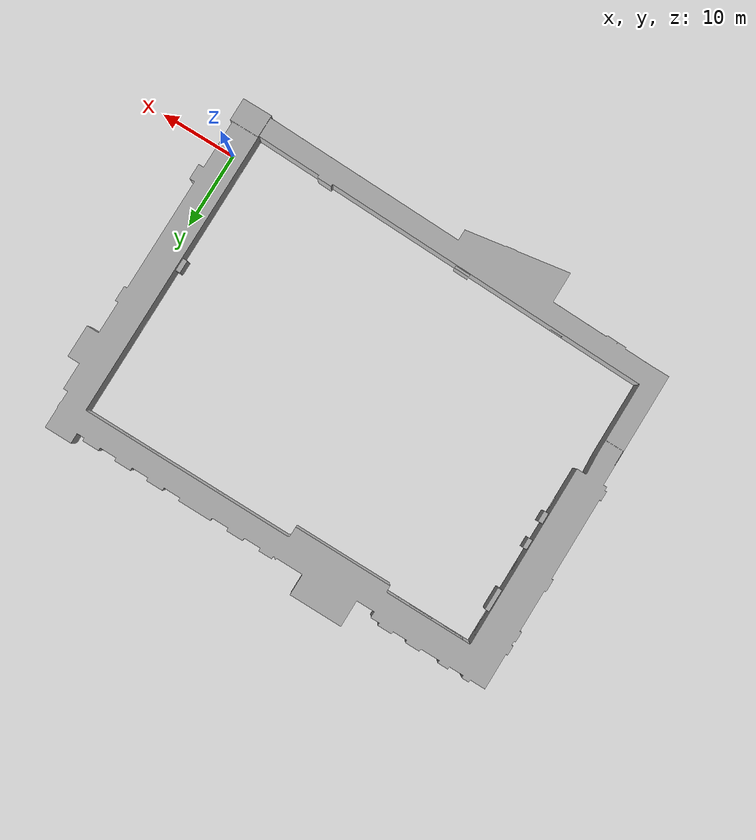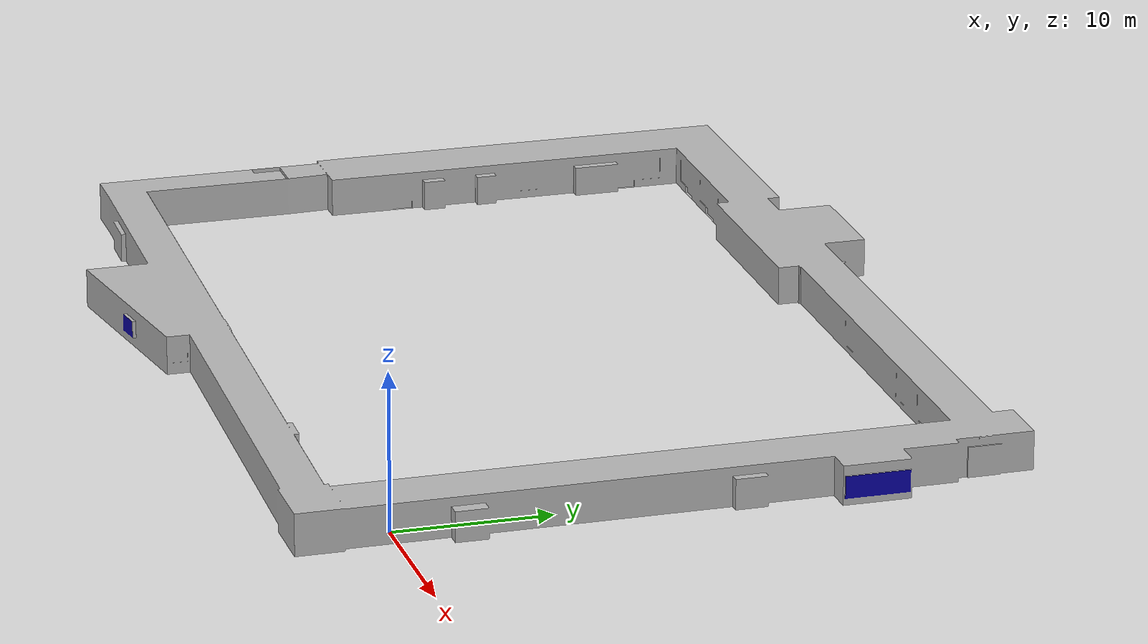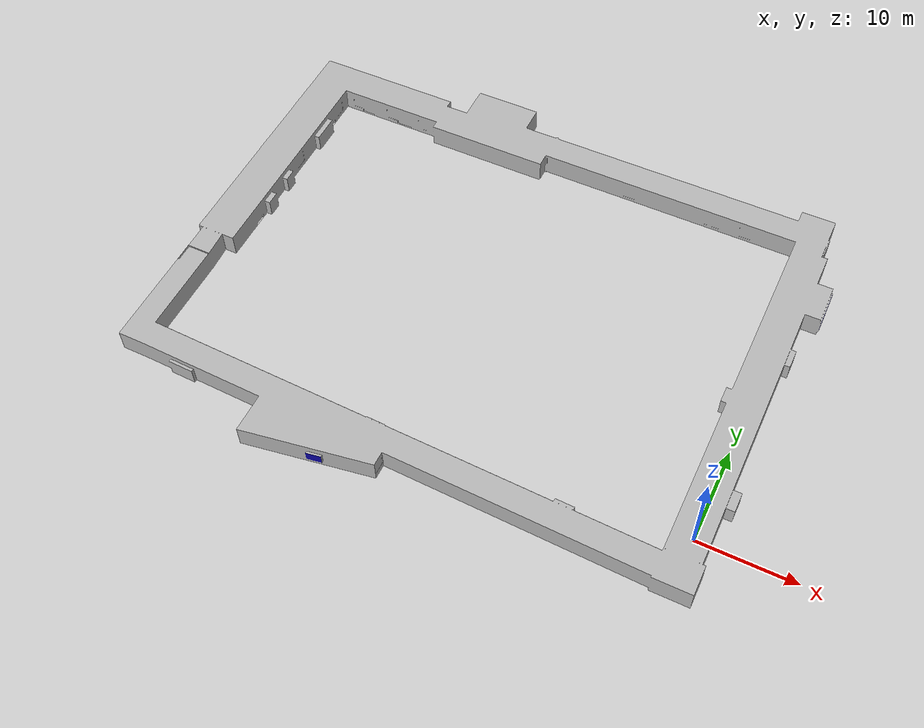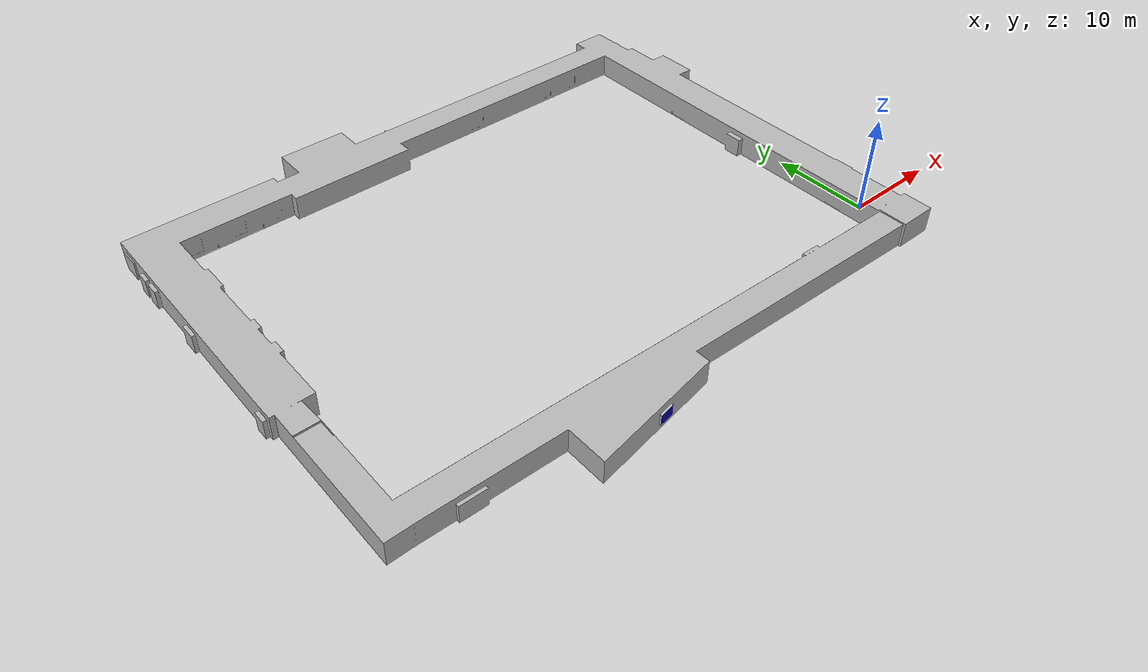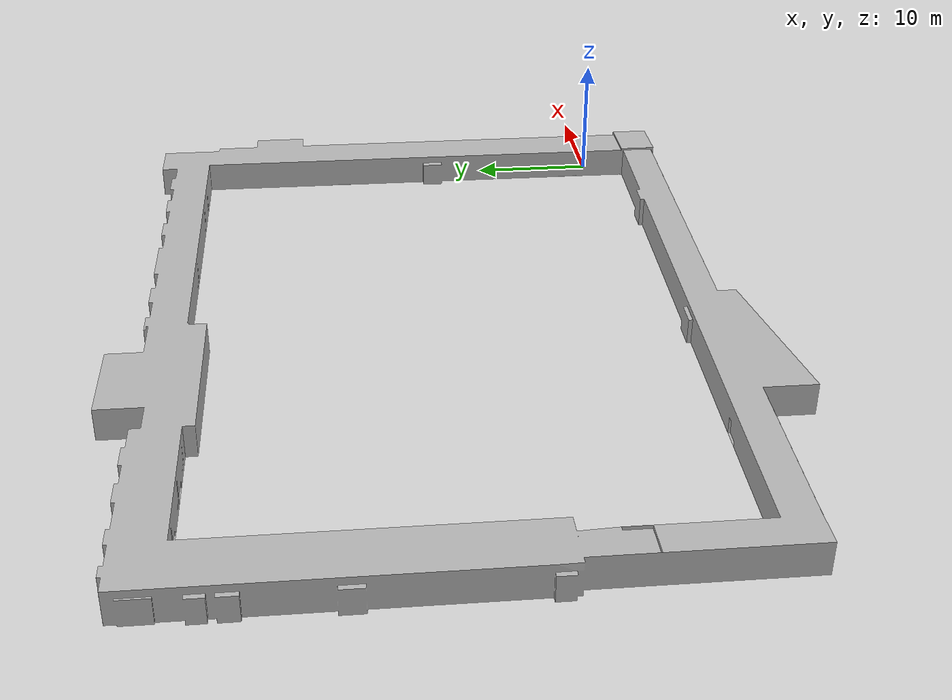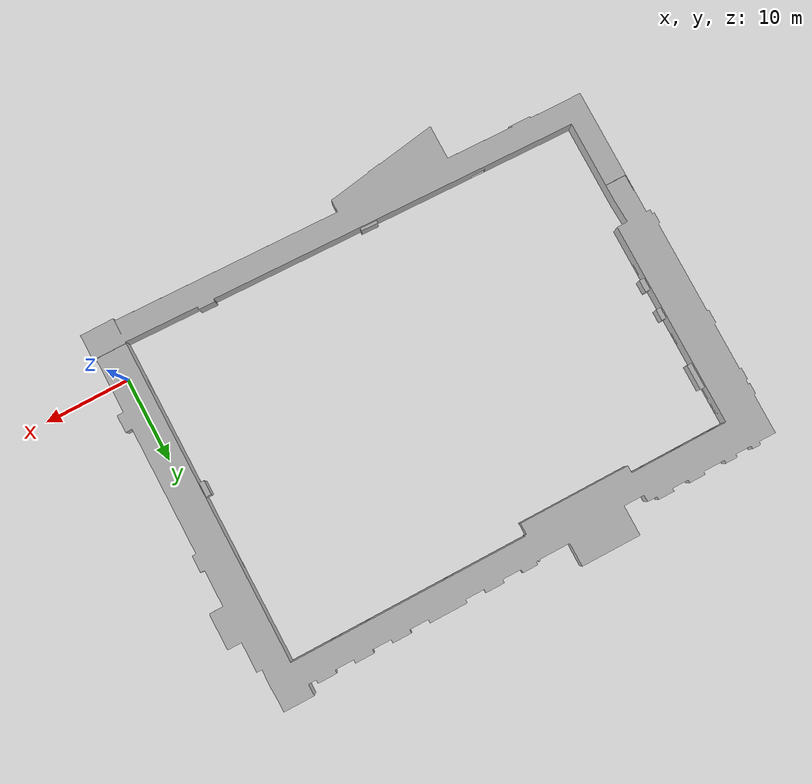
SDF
<?xml version="1.0"?>
<sdf version='1.4'>
  <world name='default'>
    <!-- DEBUGDEBUGDEBUGDEBUGDEBUGDEBUGDEBUGDEBUGDEBUGDEBUGDEBUGDEBUG -->
    <!-- DEBUGDEBUGDEBUGDEBUGDEBUGDEBUGDEBUGDEBUGDEBUGDEBUGDEBUGDEBUG -->
    <model name='cylinder_0.81'>
      <static>1</static>
      <pose>-30.8 -4 0.5 0 0 0</pose>
      <link name='link'>
        <visual name='visual'>
          <geometry>
            <cylinder>
              <radius>0.1</radius>
              <length>1</length>
            </cylinder>
          </geometry>
          <material>
            <script>
              <name>Gazebo/Grey</name>
              <uri>file://media/materials/scripts/gazebo.material</uri>
            </script>
          </material>
        </visual>
      </link>
    </model>
    <model name='cylinder_0.8'>
      <static>1</static>
      <pose>-20.8 -4 0.5 0 0 0</pose>
              <link name='link'>
        <visual name='visual'>
          <geometry>
            <cylinder>
              <radius>0.1</radius>
              <length>1</length>
            </cylinder>
          </geometry>
          <material>
            <script>
              <name>Gazebo/Grey</name>
              <uri>file://media/materials/scripts/gazebo.material</uri>
            </script>
          </material>
        </visual>
      </link>
    </model>
    <model name='cylinder_5-5'>
      <static>1</static>
      <pose>-5 -5 0.5 0 0 0</pose>
              <link name='link'>
        <visual name='visual'>
          <geometry>
            <cylinder>
              <radius>0.1</radius>
              <length>1</length>
            </cylinder>
          </geometry>
          <material>
            <script>
              <name>Gazebo/Grey</name>
              <uri>file://media/materials/scripts/gazebo.material</uri>
            </script>
          </material>
        </visual>
      </link>
    </model>
    <model name='cylinder_2.7'>
      <static>1</static>
      <pose>-2.7 -5.2 0.5 0 0 0</pose>
              <link name='link'>
        <visual name='visual'>
          <geometry>
            <cylinder>
              <radius>0.1</radius>
              <length>1</length>
            </cylinder>
          </geometry>
          <material>
            <script>
              <name>Gazebo/Grey</name>
              <uri>file://media/materials/scripts/gazebo.material</uri>
            </script>
          </material>
        </visual>
      </link>
    </model>
    <model name='cylinder_0.27'>
      <static>1</static>
      <pose>-0.27 -4.43 0.5 0 0 0</pose>
              <link name='link'>
        <visual name='visual'>
          <geometry>
            <cylinder>
              <radius>0.1</radius>
              <length>1</length>
            </cylinder>
          </geometry>
          <material>
            <script>
              <name>Gazebo/Grey</name>
              <uri>file://media/materials/scripts/gazebo.material</uri>
            </script>
          </material>
        </visual>
      </link>
    </model>
    <model name='cylinder_0.'>
      <static>1</static>
      <pose>-0. -0. 0.5 0 0 0</pose>
              <link name='link'>
        <visual name='visual'>
          <geometry>
            <cylinder>
              <radius>0.1</radius>
              <length>1</length>
            </cylinder>
          </geometry>
          <material>
            <script>
              <name>Gazebo/Grey</name>
              <uri>file://media/materials/scripts/gazebo.material</uri>
            </script>
          </material>
        </visual>
      </link>
    </model>
    <model name='cylinder_0.176127'>
      <static>1</static>
      <pose>-0.176127 8.52094 0.5 0 0 0</pose>
              <link name='link'>
        <visual name='visual'>
          <geometry>
            <cylinder>
              <radius>0.1</radius>
              <length>1</length>
            </cylinder>
          </geometry>
          <material>
            <script>
              <name>Gazebo/Grey</name>
              <uri>file://media/materials/scripts/gazebo.material</uri>
            </script>
          </material>
        </visual>
      </link>
    </model>
    <model name='cylinder_0.336142'>
      <static>1</static>
      <pose>-0.336142 15.8637 0.5 0 0 0</pose>
              <link name='link'>
        <visual name='visual'>
          <geometry>
            <cylinder>
              <radius>0.1</radius>
              <length>1</length>
            </cylinder>
          </geometry>
          <material>
            <script>
              <name>Gazebo/Grey</name>
              <uri>file://media/materials/scripts/gazebo.material</uri>
            </script>
          </material>
        </visual>
      </link>
    </model>
    <model name='cylinder_0.174103'>
      <static>1</static>
      <pose>-0.174103 23.6654 0.5 0 0 0</pose>
              <link name='link'>
        <visual name='visual'>
          <geometry>
            <cylinder>
              <radius>0.1</radius>
              <length>1</length>
            </cylinder>
          </geometry>
          <material>
            <script>
              <name>Gazebo/Grey</name>
              <uri>file://media/materials/scripts/gazebo.material</uri>
            </script>
          </material>
        </visual>
      </link>
    </model>
    <model name='cylinder_0.424533'>
      <static>1</static>
      <pose>-0.424533 30.5467 0.5 0 0 0</pose>
              <link name='link'>
        <visual name='visual'>
          <geometry>
            <cylinder>
              <radius>0.1</radius>
              <length>1</length>
            </cylinder>
          </geometry>
          <material>
            <script>
              <name>Gazebo/Grey</name>
              <uri>file://media/materials/scripts/gazebo.material</uri>
            </script>
          </material>
        </visual>
      </link>
    </model>
    <model name='cylinder_0.6'>
      <static>1</static>
      <pose>-0.6 33.65 0.5 0 0 0</pose>
              <link name='link'>
        <visual name='visual'>
          <geometry>
            <cylinder>
              <radius>0.1</radius>
              <length>1</length>
            </cylinder>
          </geometry>
          <material>
            <script>
              <name>Gazebo/Grey</name>
              <uri>file://media/materials/scripts/gazebo.material</uri>
            </script>
          </material>
        </visual>
      </link>
    </model>
    <model name='cylinder_0.75'>
      <static>1</static>
      <pose>-0.75 36.48 0.5 0 0 0</pose>
              <link name='link'>
        <visual name='visual'>
          <geometry>
            <cylinder>
              <radius>0.1</radius>
              <length>1</length>
            </cylinder>
          </geometry>
          <material>
            <script>
              <name>Gazebo/Grey</name>
              <uri>file://media/materials/scripts/gazebo.material</uri>
            </script>
          </material>
        </visual>
      </link>
    </model>
    <model name='cylinder_2.75'>
      <static>1</static>
      <pose>-2.75 36.95 0.5 0 0 0</pose>
              <link name='link'>
        <visual name='visual'>
          <geometry>
            <cylinder>
              <radius>0.1</radius>
              <length>1</length>
            </cylinder>
          </geometry>
          <material>
            <script>
              <name>Gazebo/Grey</name>
              <uri>file://media/materials/scripts/gazebo.material</uri>
            </script>
          </material>
        </visual>
      </link>
    </model>
    <model name='cylinder_9.19702'>
      <static>1</static>
      <pose>-9.19702 36.7426 0.5 0 0 0</pose>
              <link name='link'>
        <visual name='visual'>
          <geometry>
            <cylinder>
              <radius>0.1</radius>
              <length>1</length>
            </cylinder>
          </geometry>
          <material>
            <script>
              <name>Gazebo/Grey</name>
              <uri>file://media/materials/scripts/gazebo.material</uri>
            </script>
          </material>
        </visual>
      </link>
    </model>
    <model name='cylinder_5.5384'>
      <static>1</static>
      <pose>-15.5384 36.5405 0.5 0 0 0</pose>
              <link name='link'>
        <visual name='visual'>
          <geometry>
            <cylinder>
              <radius>0.1</radius>
              <length>1</length>
            </cylinder>
          </geometry>
          <material>
            <script>
              <name>Gazebo/Grey</name>
              <uri>file://media/materials/scripts/gazebo.material</uri>
            </script>
          </material>
        </visual>
      </link>
    </model>
    <model name='cylinder_3.0785'>
      <static>1</static>
      <pose>-23.0785 36.5471 0.5 0 0 0</pose>
              <link name='link'>
        <visual name='visual'>
          <geometry>
            <cylinder>
              <radius>0.1</radius>
              <length>1</length>
            </cylinder>
          </geometry>
          <material>
            <script>
              <name>Gazebo/Grey</name>
              <uri>file://media/materials/scripts/gazebo.material</uri>
            </script>
          </material>
        </visual>
      </link>
    </model>
    <model name='cylinder_5.4312'>
      <static>1</static>
      <pose>-45.4312 36.3484 0.5 0 0 0</pose>
              <link name='link'>
        <visual name='visual'>
          <geometry>
            <cylinder>
              <radius>0.1</radius>
              <length>1</length>
            </cylinder>
          </geometry>
          <material>
            <script>
              <name>Gazebo/Grey</name>
              <uri>file://media/materials/scripts/gazebo.material</uri>
            </script>
          </material>
        </visual>
      </link>
    </model>
    <model name='cylinder_0.8951'>
      <static>1</static>
      <pose>-50.8951 36.5703 0.5 0 0 0</pose>
              <link name='link'>
        <visual name='visual'>
          <geometry>
            <cylinder>
              <radius>0.1</radius>
              <length>1</length>
            </cylinder>
          </geometry>
          <material>
            <script>
              <name>Gazebo/Grey</name>
              <uri>file://media/materials/scripts/gazebo.material</uri>
            </script>
          </material>
        </visual>
      </link>
    </model>
    <model name='cylinder_3.38'>
      <static>1</static>
      <pose>-53.38 37.14 0.5 0 0 0</pose>
              <link name='link'>
        <visual name='visual'>
          <geometry>
            <cylinder>
              <radius>0.1</radius>
              <length>1</length>
            </cylinder>
          </geometry>
          <material>
            <script>
              <name>Gazebo/Grey</name>
              <uri>file://media/materials/scripts/gazebo.material</uri>
            </script>
          </material>
        </visual>
      </link>
    </model>
    <model name='cylinder_7.61'>
      <static>1</static>
      <pose>-57.61 35.32 0.5 0 0 0</pose>
              <link name='link'>
        <visual name='visual'>
          <geometry>
            <cylinder>
              <radius>0.1</radius>
              <length>1</length>
            </cylinder>
          </geometry>
          <material>
            <script>
              <name>Gazebo/Grey</name>
              <uri>file://media/materials/scripts/gazebo.material</uri>
            </script>
          </material>
        </visual>
      </link>
    </model>
    <model name='cylinder_7.5'>
      <static>1</static>
      <pose>-57.5 31.6 0.5 0 0 0</pose>
              <link name='link'>
        <visual name='visual'>
          <geometry>
            <cylinder>
              <radius>0.1</radius>
              <length>1</length>
            </cylinder>
          </geometry>
          <material>
            <script>
              <name>Gazebo/Grey</name>
              <uri>file://media/materials/scripts/gazebo.material</uri>
            </script>
          </material>
        </visual>
      </link>
    </model>
    <model name='cylinder_7.50'>
      <static>1</static>
      <pose>-57.5 20 0.5 0 0 0</pose>
              <link name='link'>
        <visual name='visual'>
          <geometry>
            <cylinder>
              <radius>0.1</radius>
              <length>1</length>
            </cylinder>
          </geometry>
          <material>
            <script>
              <name>Gazebo/Grey</name>
              <uri>file://media/materials/scripts/gazebo.material</uri>
            </script>
          </material>
        </visual>
      </link>
    </model>
    <model name='cylinder_7.54'>
      <static>1</static>
      <pose>-57.5 10 0.5 0 0 0</pose>
              <link name='link'>
        <visual name='visual'>
          <geometry>
            <cylinder>
              <radius>0.1</radius>
              <length>1</length>
            </cylinder>
          </geometry>
          <material>
            <script>
              <name>Gazebo/Grey</name>
              <uri>file://media/materials/scripts/gazebo.material</uri>
            </script>
          </material>
        </visual>
      </link>
    </model>
    <model name='cylinder_7.56'>
      <static>1</static>
      <pose>-57.5 5 0.5 0 0 0</pose>
              <link name='link'>
        <visual name='visual'>
          <geometry>
            <cylinder>
              <radius>0.1</radius>
              <length>1</length>
            </cylinder>
          </geometry>
          <material>
            <script>
              <name>Gazebo/Grey</name>
              <uri>file://media/materials/scripts/gazebo.material</uri>
            </script>
          </material>
        </visual>
      </link>
    </model>
    <model name='cylinder_7.99'>
      <static>1</static>
      <pose>-57.99 -0.75 0.5 0 0 0</pose>
              <link name='link'>
        <visual name='visual'>
          <geometry>
            <cylinder>
              <radius>0.1</radius>
              <length>1</length>
            </cylinder>
          </geometry>
          <material>
            <script>
              <name>Gazebo/Grey</name>
              <uri>file://media/materials/scripts/gazebo.material</uri>
            </script>
          </material>
        </visual>
      </link>
    </model>
    <model name='cylinder_6.62'>
      <static>1</static>
      <pose>-56.62 -3.69 0.5 0 0 0</pose>
              <link name='link'>
        <visual name='visual'>
          <geometry>
            <cylinder>
              <radius>0.1</radius>
              <length>1</length>
            </cylinder>
          </geometry>
          <material>
            <script>
              <name>Gazebo/Grey</name>
              <uri>file://media/materials/scripts/gazebo.material</uri>
            </script>
          </material>
        </visual>
      </link>
    </model>
    <model name='cylinder_4-3'>
      <static>1</static>
      <pose>-54 -3.3 0.5 0 0 0</pose>
              <link name='link'>
        <visual name='visual'>
          <geometry>
            <cylinder>
              <radius>0.1</radius>
              <length>1</length>
            </cylinder>
          </geometry>
          <material>
            <script>
              <name>Gazebo/Grey</name>
              <uri>file://media/materials/scripts/gazebo.material</uri>
            </script>
          </material>
        </visual>
      </link>
    </model>
    <!-- DEBUGDEBUGDEBUGDEBUGDEBUGDEBUGDEBUGDEBUGDEBUGDEBUGDEBUGDEBUG -->
    <!-- DEBUGDEBUGDEBUGDEBUGDEBUGDEBUGDEBUGDEBUGDEBUGDEBUGDEBUGDEBUG -->
    <light name='sun' type='directional'>
      <cast_shadows>1</cast_shadows>
      <pose>0 0 10 0 -0 0</pose>
      <diffuse>0.8 0.8 0.8 1</diffuse>
      <specular>0.2 0.2 0.2 1</specular>
      <attenuation>
        <range>1000</range>
        <constant>0.9</constant>
        <linear>0.1</linear>
        <quadratic>0.001</quadratic>
      </attenuation>
      <direction>-0.5 0.1 -0.9</direction>
    </light>
    <include><uri>model://esat_corridor_v3</uri></include>
    <physics type='ode'>
      <max_step_size>0.001</max_step_size>
      <real_time_factor>1</real_time_factor>
      <real_time_update_rate>1000</real_time_update_rate>
      <gravity>0 0 -9.8</gravity>
    </physics>
    <scene>
      <ambient>0.1 0.1 0.1 1</ambient>
      <background>0.1 0.1 0.1 1</background>
      <shadows>0</shadows>
    </scene>
    <spherical_coordinates>
      <surface_model>EARTH_WGS84</surface_model>
      <latitude_deg>0</latitude_deg>
      <longitude_deg>0</longitude_deg>
      <elevation>0</elevation>
      <heading_deg>0</heading_deg>
    </spherical_coordinates>
    <gui fullscreen='0'>
      <camera name='user_camera'>
        <pose>-30 -35 51.15 0 0.788 1.57</pose>
        <view_controller>orbit</view_controller>
      </camera>
    </gui>
    <light name='lightball' type='diffuse'>
      <cast_shadows>1</cast_shadows>
      <diffuse>0.8 0.8 0.8 1</diffuse>
      <attenuation>
        <range>1000</range>
        <constant>0.3</constant>
        <linear>0.1</linear>
        <quadratic>0.001</quadratic>
      </attenuation>
      <direction>-0.5 0.1 -0.9</direction>
      <pose>0 0 2 0 -0 0</pose>
    </light>
    <light name='lightball2' type='diffuse'>
      <cast_shadows>1</cast_shadows>
      <diffuse>0.8 0.8 0.8 1</diffuse>
      <attenuation>
        <range>1000</range>
        <constant>0.3</constant>
        <linear>0.1</linear>
        <quadratic>0.001</quadratic>
      </attenuation>
      <direction>-0.5 0.1 -0.9</direction>
      <pose>0 12 2 2 -0 0</pose>
    </light>
    <light name='lightball2b' type='diffuse'>
      <cast_shadows>1</cast_shadows>
      <diffuse>0.8 0.8 0.8 1</diffuse>
      <attenuation>
        <range>1000</range>
        <constant>0.3</constant>
        <linear>0.1</linear>
        <quadratic>0.001</quadratic>
      </attenuation>
      <direction>0.5 -0.1 0.9</direction>
      <pose>0 24 1.5 2 -0 0</pose>
    </light>
    <light name='lightball2a' type='diffuse'>
      <cast_shadows>1</cast_shadows>
      <diffuse>0.8 0.8 0.8 1</diffuse>
      <attenuation>
        <range>1000</range>
        <constant>0.3</constant>
        <linear>0.1</linear>
        <quadratic>0.001</quadratic>
      </attenuation>
      <direction>-0.5 0.1 -0.9</direction>
      <pose>0 36 2 0 -0 0</pose>
    </light>
    <light name='lightball3' type='diffuse'>
      <cast_shadows>1</cast_shadows>
      <diffuse>0.8 0.8 0.8 1</diffuse>
      <attenuation>
        <range>1000</range>
        <constant>0.3</constant>
        <linear>0.1</linear>
        <quadratic>0.001</quadratic>
      </attenuation>
      <direction>0 0 0</direction>
      <pose>-5 37 1.5 0 -0 0</pose>
    </light>
    <light name='lightball3a' type='diffuse'>
      <cast_shadows>1</cast_shadows>
      <diffuse>0.8 0.8 0.8 1</diffuse>
      <attenuation>
        <range>1000</range>
        <constant>0.3</constant>
        <linear>0.1</linear>
        <quadratic>0.001</quadratic>
      </attenuation>
      <direction>0.5 0.1 0.9</direction>
      <pose>-15 37 1.5 0 -0 -0.</pose>
    </light>
    <light name='lightball3b' type='diffuse'>
      <cast_shadows>1</cast_shadows>
      <diffuse>0.8 0.8 0.8 1</diffuse>
      <attenuation>
        <range>1000</range>
        <constant>0.3</constant>
        <linear>0.1</linear>
        <quadratic>0.001</quadratic>
      </attenuation>
      <direction>-0.5 0.1 -0.9</direction>
      <pose>-23 37 1.5 0 -0 0</pose>
    </light>
    <light name='lightball3c' type='diffuse'>
      <cast_shadows>1</cast_shadows>
      <diffuse>0.8 0.8 0.8 1</diffuse>
      <attenuation>
        <range>1000</range>
        <constant>0.3</constant>
        <linear>0.1</linear>
        <quadratic>0.001</quadratic>
      </attenuation>
      <direction>0.5 0.1 -0.9</direction>
      <pose>-10 37 1.5 0 -0.5 0.8</pose>
    </light>
    <light name='lightball4' type='diffuse'>
      <cast_shadows>1</cast_shadows>
      <diffuse>0.8 0.8 0.8 1</diffuse>
      <attenuation>
        <range>1000</range>
        <constant>0.3</constant>
        <linear>0.1</linear>
        <quadratic>0.001</quadratic>
      </attenuation>
      <direction>-0.5 0.1 -0.9</direction>
      <pose>-31 36 2 0 -0 0</pose>
    </light>
    <light name='lightball4a' type='diffuse'>
      <cast_shadows>1</cast_shadows>
      <diffuse>0.8 0.8 0.8 1</diffuse>
      <attenuation>
        <range>1000</range>
        <constant>0.3</constant>
        <linear>0.1</linear>
        <quadratic>0.001</quadratic>
      </attenuation>
      <direction>-0.5 0.1 -0.9</direction>
      <pose>-37 36 2 0 -0 0</pose>
    </light>
    <light name='lightball4b' type='diffuse'>
      <cast_shadows>1</cast_shadows>
      <diffuse>0.8 0.8 0.8 1</diffuse>
      <attenuation>
        <range>1000</range>
        <constant>0.3</constant>
        <linear>0.1</linear>
        <quadratic>0.001</quadratic>
      </attenuation>
      <direction>-0.5 0.1 -0.9</direction>
      <pose>-45 36 2 0 -0 0</pose>
    </light>
    <light name='lightball5' type='diffuse'>
      <cast_shadows>1</cast_shadows>
      <diffuse>0.8 0.8 0.8 1</diffuse>
      <attenuation>
        <range>1000</range>
        <constant>0.9</constant>
        <linear>0.1</linear>
        <quadratic>0.001</quadratic>
      </attenuation>
      <direction>-0.5 0.1 -0.9</direction>
      <pose>-55 36 2 0 -0 0</pose>
    </light>
    <light name='lightball5a' type='diffuse'>
      <cast_shadows>1</cast_shadows>
      <diffuse>0.8 0.8 0.8 1</diffuse>
      <attenuation>
        <range>1000</range>
        <constant>0.9</constant>
        <linear>0.1</linear>
        <quadratic>0.001</quadratic>
      </attenuation>
      <direction>-0.5 0.1 -0.9</direction>
      <pose>-56 24 2 0 -0 0</pose>
    </light>
    <light name='lightball5b' type='diffuse'>
      <cast_shadows>1</cast_shadows>
      <diffuse>0.8 0.8 0.8 1</diffuse>
      <attenuation>
        <range>1000</range>
        <constant>0.9</constant>
        <linear>0.1</linear>
        <quadratic>0.001</quadratic>
      </attenuation>
      <direction>-0.5 0.1 -0.9</direction>
      <pose>-57 12 2 0 -0 0</pose>
    </light>
    <light name='lightball6a' type='diffuse'>
      <cast_shadows>1</cast_shadows>
      <diffuse>0.8 0.8 0.8 1</diffuse>
      <attenuation>
        <range>1000</range>
        <constant>0.9</constant>
        <linear>0.1</linear>
        <quadratic>0.001</quadratic>
      </attenuation>
      <direction>-0.5 0.1 -0.9</direction>
      <pose>-57 7 2 0 -0 0</pose>
    </light>
    <light name='lightball6b' type='diffuse'>
      <cast_shadows>1</cast_shadows>
      <diffuse>0.8 0.8 0.8 1</diffuse>
      <attenuation>
        <range>1000</range>
        <constant>0.9</constant>
        <linear>0.1</linear>
        <quadratic>0.001</quadratic>
      </attenuation>
      <direction>-0.5 0.1 -0.9</direction>
      <pose>-57 3 2 0 -0 0</pose>
    </light>
    <light name='lightball6c' type='diffuse'>
      <cast_shadows>1</cast_shadows>
      <diffuse>0.8 0.8 0.8 1</diffuse>
      <attenuation>
        <range>1000</range>
        <constant>0.9</constant>
        <linear>0.1</linear>
        <quadratic>0.001</quadratic>
      </attenuation>
      <direction>-0.5 0.1 -0.9</direction>
      <pose>-57 0 2 0 -0 0</pose>
    </light>
    <light name='lightball6d' type='diffuse'>
      <cast_shadows>1</cast_shadows>
      <diffuse>0.8 0.8 0.8 1</diffuse>
      <attenuation>
        <range>1000</range>
        <constant>0.9</constant>
        <linear>0.1</linear>
        <quadratic>0.001</quadratic>
      </attenuation>
      <direction>-0.5 0.1 -0.9</direction>
      <pose>-57 -2 2 0 -0 0</pose>
    </light>
    <light name='lightball7a' type='diffuse'>
      <cast_shadows>1</cast_shadows>
      <diffuse>0.8 0.8 0.8 1</diffuse>
      <attenuation>
        <range>1000</range>
        <constant>0.9</constant>
        <linear>0.1</linear>
        <quadratic>0.001</quadratic>
      </attenuation>
      <direction>-0.5 0.1 -0.9</direction>
      <pose>-53 -3.5 2 0 -0 0</pose>
    </light>
    <light name='lightball7b' type='diffuse'>
      <cast_shadows>1</cast_shadows>
      <diffuse>0.8 0.8 0.8 1</diffuse>
      <attenuation>
        <range>1000</range>
        <constant>0.9</constant>
        <linear>0.1</linear>
        <quadratic>0.001</quadratic>
      </attenuation>
      <direction>-0.5 0.1 -0.9</direction>
      <pose>-50 -3.5 2 0 -0 0</pose>
    </light>
    <light name='lightball7c' type='diffuse'>
      <cast_shadows>1</cast_shadows>
      <diffuse>0.8 0.8 0.8 1</diffuse>
      <attenuation>
        <range>1000</range>
        <constant>0.9</constant>
        <linear>0.1</linear>
        <quadratic>0.001</quadratic>
      </attenuation>
      <direction>-0.5 0.1 -0.9</direction>
      <pose>-47 -3.5 2 0 -0 0</pose>
    </light>
    <light name='lightball7d' type='diffuse'>
      <cast_shadows>1</cast_shadows>
      <diffuse>0.8 0.8 0.8 1</diffuse>
      <attenuation>
        <range>1000</range>
        <constant>0.9</constant>
        <linear>0.1</linear>
        <quadratic>0.001</quadratic>
      </attenuation>
      <direction>-0.5 0.1 -0.9</direction>
      <pose>-44 -3.5 2 0 -0 0</pose>
    </light>
    <light name='lightball7e' type='diffuse'>
      <cast_shadows>1</cast_shadows>
      <diffuse>0.8 0.8 0.8 1</diffuse>
      <attenuation>
        <range>1000</range>
        <constant>0.9</constant>
        <linear>0.1</linear>
        <quadratic>0.001</quadratic>
      </attenuation>
      <direction>-0.5 0.1 -0.9</direction>
      <pose>-40 -3.5 2 0 -0 0</pose>
    </light>
    <light name='lightball7f' type='diffuse'>
      <cast_shadows>1</cast_shadows>
      <diffuse>0.8 0.8 0.8 1</diffuse>
      <attenuation>
        <range>1000</range>
        <constant>0.9</constant>
        <linear>0.1</linear>
        <quadratic>0.001</quadratic>
      </attenuation>
      <direction>-0.5 0.1 -0.9</direction>
      <pose>-37 -3.5 2 0 -0 0</pose>
    </light>
    <light name='lightball7g' type='diffuse'>
      <cast_shadows>1</cast_shadows>
      <diffuse>0.8 0.8 0.8 1</diffuse>
      <attenuation>
        <range>1000</range>
        <constant>0.9</constant>
        <linear>0.1</linear>
        <quadratic>0.001</quadratic>
      </attenuation>
      <direction>-0.5 0.1 -0.9</direction>
      <pose>-34 -3.6 2 0 -0 0</pose>
    </light>
    <light name='lightball8a' type='diffuse'>
      <cast_shadows>1</cast_shadows>
      <diffuse>0.8 0.8 0.8 1</diffuse>
      <attenuation>
        <range>1000</range>
        <constant>0.9</constant>
        <linear>0.1</linear>
        <quadratic>0.001</quadratic>
      </attenuation>
      <direction>-0.5 0.1 -0.9</direction>
      <pose>-30 -3.78 2 0 -0 0</pose>
    </light>
    <light name='lightball8b' type='diffuse'>
      <cast_shadows>1</cast_shadows>
      <diffuse>0.8 0.8 0.8 1</diffuse>
      <attenuation>
        <range>1000</range>
        <constant>0.9</constant>
        <linear>0.1</linear>
        <quadratic>0.001</quadratic>
      </attenuation>
      <direction>-0.5 0.1 -0.9</direction>
      <pose>-27 -3.92 2 0 -0 0</pose>
    </light>
    <light name='lightball8c' type='diffuse'>
      <cast_shadows>1</cast_shadows>
      <diffuse>0.8 0.8 0.8 1</diffuse>
      <attenuation>
        <range>1000</range>
        <constant>0.9</constant>
        <linear>0.1</linear>
        <quadratic>0.001</quadratic>
      </attenuation>
      <direction>-0.5 0.1 -0.9</direction>
      <pose>-24 -4.06 2 0 -0 0</pose>
    </light>
    <light name='lightball8d' type='diffuse'>
      <cast_shadows>1</cast_shadows>
      <diffuse>0.8 0.8 0.8 1</diffuse>
      <attenuation>
        <range>1000</range>
        <constant>0.9</constant>
        <linear>0.1</linear>
        <quadratic>0.001</quadratic>
      </attenuation>
      <direction>-0.5 0.1 -0.9</direction>
      <pose>-20 -4.2 2 0 -0 0</pose>
    </light>
    <light name='lightball9a' type='diffuse'>
      <cast_shadows>1</cast_shadows>
      <diffuse>0.8 0.8 0.8 1</diffuse>
      <attenuation>
        <range>1000</range>
        <constant>0.9</constant>
        <linear>0.1</linear>
        <quadratic>0.001</quadratic>
      </attenuation>
      <direction>-0.5 0.1 -0.9</direction>
      <pose>-17 -4.34 2 0 -0 0</pose>
    </light>
    <light name='lightball9b' type='diffuse'>
      <cast_shadows>1</cast_shadows>
      <diffuse>0.8 0.8 0.8 1</diffuse>
      <attenuation>
        <range>1000</range>
        <constant>0.9</constant>
        <linear>0.1</linear>
        <quadratic>0.001</quadratic>
      </attenuation>
      <direction>-0.5 0.1 -0.9</direction>
      <pose>-14 -4.48 2 0 -0 0</pose>
    </light>
    <light name='lightball9c' type='diffuse'>
      <cast_shadows>1</cast_shadows>
      <diffuse>0.8 0.8 0.8 1</diffuse>
      <attenuation>
        <range>1000</range>
        <constant>0.9</constant>
        <linear>0.1</linear>
        <quadratic>0.001</quadratic>
      </attenuation>
      <direction>-0.5 0.1 -0.9</direction>
      <pose>-10 -4.62 2 0 -0 0</pose>
    </light>
    <light name='lightball9d' type='diffuse'>
      <cast_shadows>1</cast_shadows>
      <diffuse>0.8 0.8 0.8 1</diffuse>
      <attenuation>
        <range>1000</range>
        <constant>0.9</constant>
        <linear>0.1</linear>
        <quadratic>0.001</quadratic>
      </attenuation>
      <direction>-0.5 0.1 -0.9</direction>
      <pose>-7 -4.76 2 0 -0 0</pose>
    </light>
    <light name='lightball9e' type='diffuse'>
      <cast_shadows>1</cast_shadows>
      <diffuse>0.8 0.8 0.8 1</diffuse>
      <attenuation>
        <range>1000</range>
        <constant>0.9</constant>
        <linear>0.1</linear>
        <quadratic>0.001</quadratic>
      </attenuation>
      <direction>-0.5 0.1 -0.9</direction>
      <pose>-4 -4.9 2 0 -0 0</pose>
    </light>
    <light name='lightball9f' type='diffuse'>
      <cast_shadows>1</cast_shadows>
      <diffuse>0.8 0.8 0.8 1</diffuse>
      <attenuation>
        <range>1000</range>
        <constant>0.9</constant>
        <linear>0.1</linear>
        <quadratic>0.001</quadratic>
      </attenuation>
      <direction>-0.5 0.1 -0.9</direction>
      <pose>-1 -5.1 2 0 -0 0</pose>
    </light>
  </world>
</sdf>

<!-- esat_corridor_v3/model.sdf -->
<sdf version='1.4'>
  <model name='esat_corridor_v3'>
    <pose>-41 11 0  0 0 3.14</pose>
      <static>1</static>
      <link name='body'>
        <visual name='visual'>
          <geometry>
            <mesh>
              <uri>model://esat_corridor_v3/esat_round.dae</uri>
            </mesh>
          </geometry>
        </visual>
        <collision name='collision'>
          <geometry>
            <mesh>
              <uri>model://esat_corridor_v3/esat_round.dae</uri>
            </mesh>
          </geometry>
          <max_contacts>10000</max_contacts>
          <surface>
            <bounce/>
            <friction>
              <ode/>
            </friction>
            <contact>
              <ode/>
            </contact>
          </surface>
        </collision>
        <velocity_decay>
          <linear>0</linear>
          <angular>0</angular>
        </velocity_decay>
        <self_collide>0</self_collide>
        <kinematic>0</kinematic>
        <gravity>1</gravity>
      </link>
    </model>
</sdf>
